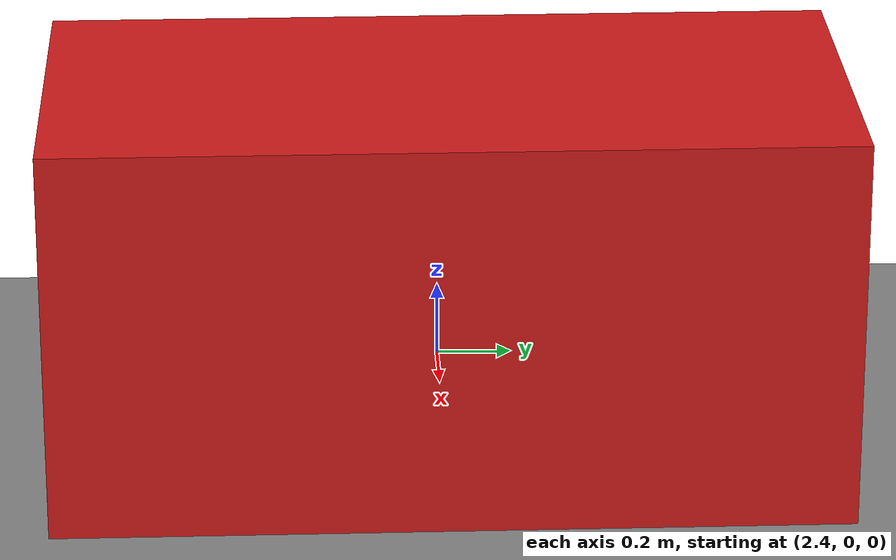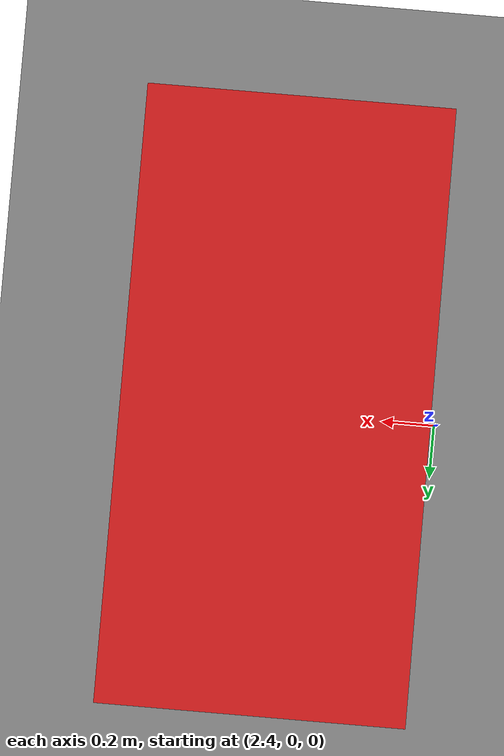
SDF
<?xml version="1.0"?>

<sdf version="1.10">

  <world name="car_world">

    <!-- da physics -->

    <physics
      name="default_physics"
      type="ode">

      <max_step_size>0.001</max_step_size>

      <real_time_factor>1</real_time_factor>

      <real_time_update_rate>1000</real_time_update_rate>

    </physics>

    <!-- gravity -->

    <gravity>0 0 -9.81</gravity>

    <!-- lighting-->

    <light
      name="sun"
      type="directional">

      <pose>0 0 10 0 0 0</pose>

      <cast_shadows>true</cast_shadows>

      <diffuse>0.8 0.8 0.8 1</diffuse>

      <specular>0.2 0.2 0.2 1</specular>

      <direction>-0.5 0.5 -1</direction>

    </light>

    <!-- ground -->

    <model name="ground">

      <static>true</static>

      <link name="ground_link">

        <collision name="ground_collision">

          <geometry>

            <plane>
              <normal>0 0 1</normal>
              <size>100 100</size>
            </plane>

          </geometry>

        </collision>

        <visual name="ground_visual">

          <geometry>

            <plane>
              <normal>0 0 1</normal>
              <size>100 100</size>
            </plane>

          </geometry>

          <material>

            <ambient>0.4 0.4 0.4 1</ambient>
            <diffuse>0.5 0.5 0.5 1</diffuse>

          </material>

        </visual>

      </link>

    </model>

    <!-- obstacle -->

    <model name="obstacle">

      <static>true</static>

      <pose>3 0 0.5 0 0 0</pose>

      <link name="obstacle_link">

        <collision name="collision">

          <geometry>

            <box>
              <size>1 2 1</size>
            </box>

          </geometry>

        </collision>

        <visual name="visual">

          <geometry>

            <box>
              <size>1 2 1</size>
            </box>

          </geometry>

          <material>

            <ambient>0.8 0.1 0.1 1</ambient>
            <diffuse>0.8 0.1 0.1 1</diffuse>

          </material>

        </visual>

      </link>

    </model>

    <!-- gazebo systems -->

    <plugin
      filename="gz-sim-physics-system"
      name="gz::sim::systems::Physics"/>

    <plugin
      filename="gz-sim-user-commands-system"
      name="gz::sim::systems::UserCommands"/>

    <plugin
      filename="gz-sim-scene-broadcaster-system"
      name="gz::sim::systems::SceneBroadcaster"/>

  </world>

</sdf>
